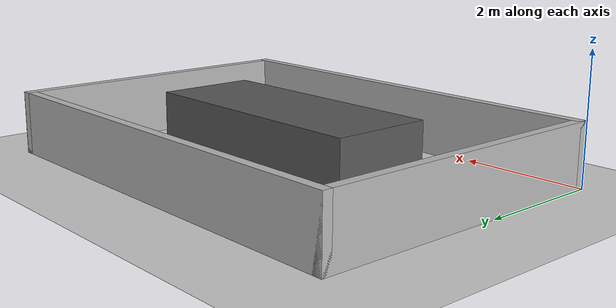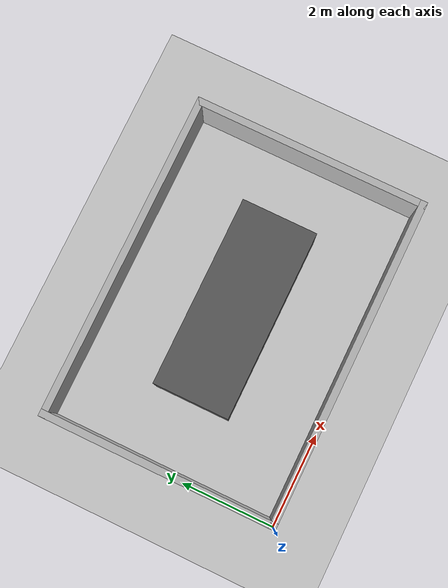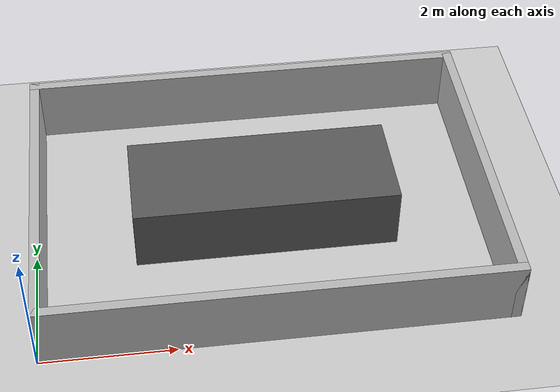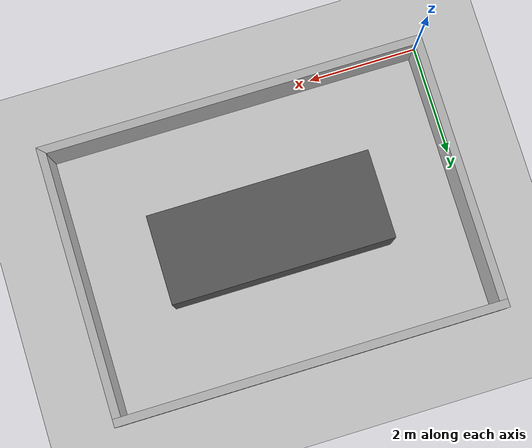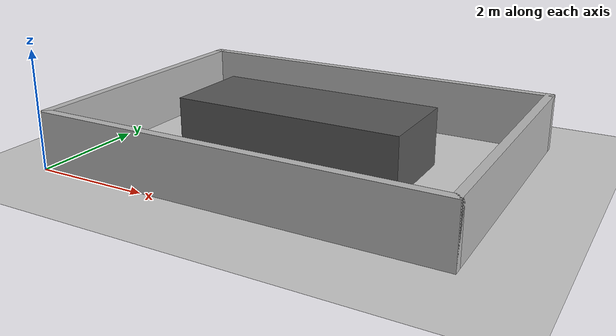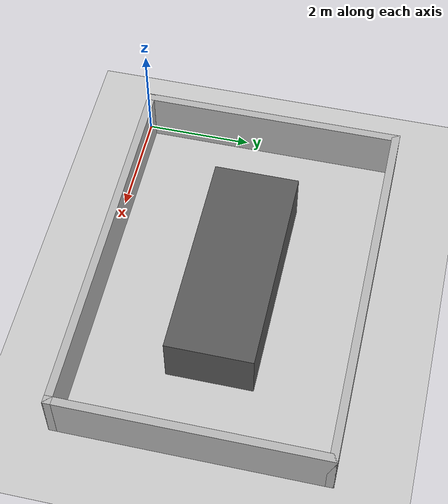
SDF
<?xml version="1.0"?>
<sdf version="1.8">
  <world name="default">
    <plugin filename="gz-sim-physics-system" name="gz::sim::systems::Physics"/>
    <plugin filename="gz-sim-user-commands-system" name="gz::sim::systems::UserCommands"/>
    <plugin filename="gz-sim-sensors-system" name="gz::sim::systems::Sensors">
      <render_engine>ogre2</render_engine>
    </plugin>
    <plugin filename="gz-sim-imu-system" name="gz::sim::systems::Imu"/>

    <light name="sun" type="directional">
      <cast_shadows>false</cast_shadows>
      <pose>0 0 10 0 0 0</pose>
      <diffuse>0.8 0.8 0.8 1</diffuse>
      <specular>0.8 0.8 0.8 1</specular>
      <direction>-0.5 0.1 -0.9</direction>
    </light>

    <model name="ground_plane">
      <static>true</static>
      <link name="link">
        <collision name="collision">
          <geometry><plane><normal>0 0 1</normal><size>20 20</size></plane></geometry>
        </collision>
        <visual name="visual">
          <geometry><plane><normal>0 0 1</normal><size>20 20</size></plane></geometry>
          <material><ambient>0.8 0.8 0.8 1</ambient><diffuse>0.8 0.8 0.8 1</diffuse></material>
        </visual>
      </link>
    </model>

    <!-- Outer 7 m x 5 m boundary; 0.15 m wall thickness matches 3 map cells. -->
    <model name="outer_walls">
      <static>true</static>
      <link name="walls">
        <collision name="south"><pose>3.5 0.075 0.5 0 0 0</pose><geometry><box><size>7.0 0.15 1.0</size></box></geometry></collision>
        <collision name="north"><pose>3.5 4.925 0.5 0 0 0</pose><geometry><box><size>7.0 0.15 1.0</size></box></geometry></collision>
        <collision name="west"><pose>0.075 2.5 0.5 0 0 0</pose><geometry><box><size>0.15 5.0 1.0</size></box></geometry></collision>
        <collision name="east"><pose>6.925 2.5 0.5 0 0 0</pose><geometry><box><size>0.15 5.0 1.0</size></box></geometry></collision>
        <visual name="south_v"><pose>3.5 0.075 0.5 0 0 0</pose><geometry><box><size>7.0 0.15 1.0</size></box></geometry></visual>
        <visual name="north_v"><pose>3.5 4.925 0.5 0 0 0</pose><geometry><box><size>7.0 0.15 1.0</size></box></geometry></visual>
        <visual name="west_v"><pose>0.075 2.5 0.5 0 0 0</pose><geometry><box><size>0.15 5.0 1.0</size></box></geometry></visual>
        <visual name="east_v"><pose>6.925 2.5 0.5 0 0 0</pose><geometry><box><size>0.15 5.0 1.0</size></box></geometry></visual>
      </link>
    </model>

    <!-- Central island: forces top and bottom parallel return corridors. -->
    <model name="central_island">
      <static>true</static>
      <pose>3.5 2.5 0.5 0 0 0</pose>
      <link name="link">
        <collision name="collision"><geometry><box><size>4.0 1.6 1.0</size></box></geometry></collision>
        <visual name="visual">
          <geometry><box><size>4.0 1.6 1.0</size></box></geometry>
          <material><ambient>0.35 0.35 0.35 1</ambient><diffuse>0.35 0.35 0.35 1</diffuse></material>
        </visual>
      </link>
    </model>

    <scene><shadows>false</shadows></scene>
    <physics name="3ms" type="ode"><max_step_size>0.003</max_step_size><real_time_factor>1</real_time_factor></physics>
  </world>
</sdf>
